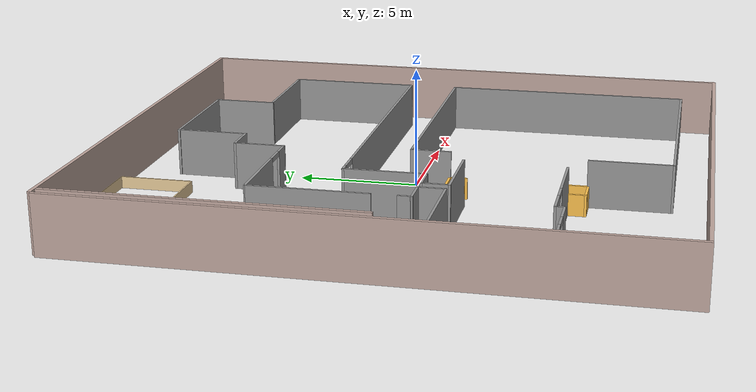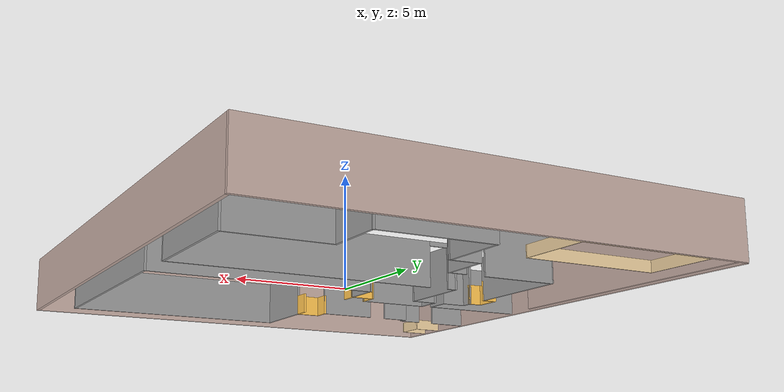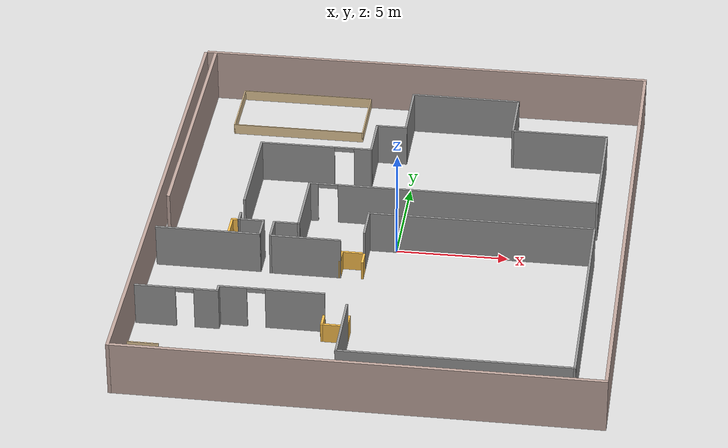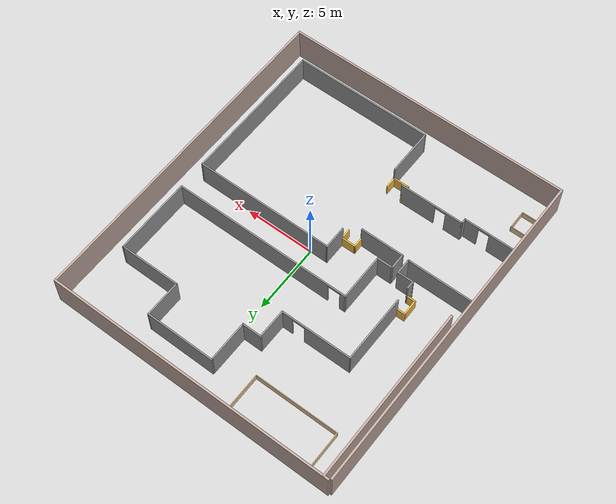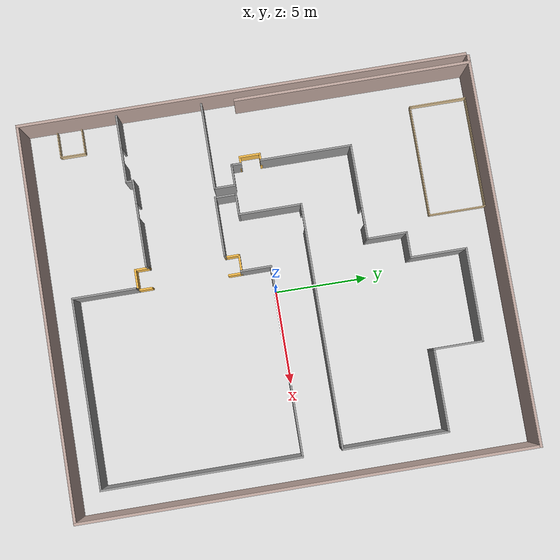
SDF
<?xml version='1.0'?>
<sdf version='1.6'>
  <model name='IKEAfactory'>
    <pose frame=''>-0.168999 -0.006501 0 0 -0 0</pose>
    <link name='Wall_1'>
      <collision name='Wall_1_Collision'>
        <geometry>
          <box>
            <size>21 0.15 2.5</size>
          </box>
        </geometry>
        <pose frame=''>0 0 1.25 0 -0 0</pose>
      </collision>
      <visual name='Wall_1_Visual'>
        <pose frame=''>0 0 1.25 0 -0 0</pose>
        <geometry>
          <box>
            <size>21 0.15 2.5</size>
          </box>
        </geometry>
        <material>
          <script>
            <uri>file://media/materials/scripts/gazebo.material</uri>
            <name>Gazebo/Grey</name>
          </script>
          <ambient>0.760784 0.662745 0.627451 1</ambient>
        </material>
        <meta>
          <layer>0</layer>
        </meta>
      </visual>
      <pose frame=''>-1e-06 -12.1075 0 0 -0 0</pose>
    </link>
    <link name='Wall_500'>
      <collision name='Wall_500_Collision'>
        <geometry>
          <box>
            <size>21 0.15 2.5</size>
          </box>
        </geometry>
        <pose frame=''>0 24.25 1.25 0 -0 0</pose>
      </collision>
      <visual name='Wall_500_Visual'>
        <pose frame=''>0 24.25 1.25 0 -0 0</pose>
        <geometry>
          <box>
            <size>21 0.15 2.5</size>
          </box>
        </geometry>
        <material>
          <script>
            <uri>file://media/materials/scripts/gazebo.material</uri>
            <name>Gazebo/Grey</name>
          </script>
          <ambient>0.760784 0.662745 0.627451 1</ambient>
        </material>
        <meta>
          <layer>0</layer>
        </meta>
      </visual>
      <pose frame=''>-1e-06 -12.1075 0 0 -0 0</pose>
    </link>
    <link name='Wall_101'>
      <collision name='Wall_101_Collision'>
        <geometry>
          <box>
            <size>0.596159 0.1 2</size>
          </box>
        </geometry>
        <pose frame=''>0 0 1 0 -0 0</pose>
      </collision>
      <visual name='Wall_101_Visual'>
        <pose frame=''>0 0 1 0 -0 0</pose>
        <geometry>
          <box>
            <size>0.596159 0.1 2</size>
          </box>
        </geometry>
        <material>
          <script>
            <uri>file://media/materials/scripts/gazebo.material</uri>
            <name>Gazebo/Grey</name>
          </script>
          <ambient>1 1 1 1</ambient>
        </material>
        <meta>
          <layer>0</layer>
        </meta>
      </visual>
      <pose frame=''>-6.782 -0.994499 0 0 -0 -1.57483</pose>
    </link>
    <link name='Wall_102'>
      <collision name='Wall_102_Collision'>
        <geometry>
          <box>
            <size>1.19987 0.1 2</size>
          </box>
        </geometry>
        <pose frame=''>0 0 1 0 -0 0</pose>
      </collision>
      <visual name='Wall_102_Visual'>
        <pose frame=''>0 0 1 0 -0 0</pose>
        <geometry>
          <box>
            <size>1.19987 0.1 2</size>
          </box>
        </geometry>
        <material>
          <script>
            <uri>file://media/materials/scripts/gazebo.material</uri>
            <name>Gazebo/Grey</name>
          </script>
          <ambient>1 1 1 1</ambient>
        </material>
        <meta>
          <layer>0</layer>
        </meta>
      </visual>
      <pose frame=''>-6.233 -1.2425 0 0 -0 0</pose>
    </link>
    <link name='Wall_103'>
      <collision name='Wall_103_Collision'>
        <geometry>
          <box>
            <size>1.16454 0.1 2</size>
          </box>
        </geometry>
        <pose frame=''>0 0 1 0 -0 0</pose>
      </collision>
      <visual name='Wall_103_Visual'>
        <pose frame=''>0 0 1 0 -0 0</pose>
        <geometry>
          <box>
            <size>1.16454 0.1 2</size>
          </box>
        </geometry>
        <material>
          <script>
            <uri>file://media/materials/scripts/gazebo.material</uri>
            <name>Gazebo/Grey</name>
          </script>
          <ambient>1 1 1 1</ambient>
        </material>
        <meta>
          <layer>0</layer>
        </meta>
      </visual>
      <pose frame=''>-5.683 -1.775 0 0 -0 -1.5708</pose>
    </link>
    <link name='Wall_11'>
      <collision name='Wall_11_Collision'>
        <geometry>
          <box>
            <size>0.83917 0.1 0.9</size>
          </box>
        </geometry>
        <pose frame=''>0 0 0.45 0 -0 0</pose>
      </collision>
      <visual name='Wall_11_Visual'>
        <pose frame=''>0 0 0.45 0 -0 0</pose>
        <geometry>
          <box>
            <size>0.83917 0.1 0.9</size>
          </box>
        </geometry>
        <material>
          <script>
            <uri>file://media/materials/scripts/gazebo.material</uri>
            <name>Gazebo/Grey</name>
          </script>
          <ambient>1 0.764706 0.305882 1</ambient>
        </material>
        <meta>
          <layer>0</layer>
        </meta>
      </visual>
      <pose frame=''>-2.19657 -6.92801 0 0 -0 -1.56963</pose>
    </link>
    <link name='Wall_12'>
      <collision name='Wall_12_Collision'>
        <geometry>
          <box>
            <size>1.20212 0.1 0.9</size>
          </box>
        </geometry>
        <pose frame=''>0 0 0.45 0 -0 0</pose>
      </collision>
      <visual name='Wall_12_Visual'>
        <pose frame=''>0 0 0.45 0 -0 0</pose>
        <geometry>
          <box>
            <size>1.20212 0.1 0.9</size>
          </box>
        </geometry>
        <material>
          <script>
            <uri>file://media/materials/scripts/gazebo.material</uri>
            <name>Gazebo/Grey</name>
          </script>
          <ambient>1 0.764706 0.305882 1</ambient>
        </material>
        <meta>
          <layer>0</layer>
        </meta>
      </visual>
      <pose frame=''>-1.64706 -7.29751 0 0 -0 1.6e-05</pose>
    </link>
    <link name='Wall_14'>
      <collision name='Wall_14_Collision'>
        <geometry>
          <box>
            <size>0.83786 0.1 0.9</size>
          </box>
        </geometry>
        <pose frame=''>0 0 0.45 0 -0 0</pose>
      </collision>
      <visual name='Wall_14_Visual'>
        <pose frame=''>0 0 0.45 0 -0 0</pose>
        <geometry>
          <box>
            <size>0.83786 0.1 0.9</size>
          </box>
        </geometry>
        <material>
          <script>
            <uri>file://media/materials/scripts/gazebo.material</uri>
            <name>Gazebo/Grey</name>
          </script>
          <ambient>1 0.764706 0.305882 1</ambient>
        </material>
        <meta>
          <layer>0</layer>
        </meta>
      </visual>
      <pose frame=''>-1.096 -6.9285 0 0 -0 1.5708</pose>
    </link>
    <link name='Wall_2'>
      <collision name='Wall_2_Collision'>
        <geometry>
          <box>
            <size>24.25 0.15 2.5</size>
          </box>
        </geometry>
        <pose frame=''>0 0 1.25 0 -0 0</pose>
      </collision>
      <visual name='Wall_2_Visual'>
        <pose frame=''>0 0 1.25 0 -0 0</pose>
        <geometry>
          <box>
            <size>24.25 0.15 2.5</size>
          </box>
        </geometry>
        <material>
          <script>
            <uri>file://media/materials/scripts/gazebo.material</uri>
            <name>Gazebo/Grey</name>
          </script>
          <ambient>0.760784 0.662745 0.627451 1</ambient>
        </material>
        <meta>
          <layer>0</layer>
        </meta>
      </visual>
      <pose frame=''>10.425 -0.057499 0 0 -0 1.5708</pose>
    </link>
    <link name='Wall_502'>
      <collision name='Wall_502_Collision'>
        <geometry>
          <box>
            <size>24.25 0.15 2.5</size>
          </box>
        </geometry>
        <pose frame=''>0 21 1.25 0 -0 0</pose>
      </collision>
      <visual name='Wall_502_Visual'>
        <pose frame=''>0 21 1.25 0 -0 0</pose>
        <geometry>
          <box>
            <size>24.25 0.15 2.5</size>
          </box>
        </geometry>
        <material>
          <script>
            <uri>file://media/materials/scripts/gazebo.material</uri>
            <name>Gazebo/Grey</name>
          </script>
          <ambient>0.760784 0.662745 0.627451 1</ambient>
        </material>
        <meta>
          <layer>0</layer>
        </meta>
      </visual>
      <pose frame=''>10.425 -0.057499 0 0 -0 1.5708</pose>
    </link>
    <link name='Wall_23'>
      <collision name='Wall_23_Collision'>
        <geometry>
          <box>
            <size>3.45176 0.1 2</size>
          </box>
        </geometry>
        <pose frame=''>0 0 1 0 -0 0</pose>
      </collision>
      <visual name='Wall_23_Visual'>
        <pose frame=''>0 0 1 0 -0 0</pose>
        <geometry>
          <box>
            <size>3.45176 0.1 2</size>
          </box>
        </geometry>
        <material>
          <script>
            <uri>file://media/materials/scripts/gazebo.material</uri>
            <name>Gazebo/Grey</name>
          </script>
          <ambient>1 1 1 1</ambient>
        </material>
        <meta>
          <layer>0</layer>
        </meta>
      </visual>
      <pose frame=''>-1.096 -8.9735 0 0 -0 -1.5708</pose>
    </link>
    <link name='Wall_24'>
      <collision name='Wall_24_Collision'>
        <geometry>
          <box>
            <size>10.2003 0.1 2</size>
          </box>
        </geometry>
        <pose frame=''>0 0 1 0 -0 0</pose>
      </collision>
      <visual name='Wall_24_Visual'>
        <pose frame=''>0 0 1 0 -0 0</pose>
        <geometry>
          <box>
            <size>10.2003 0.1 2</size>
          </box>
        </geometry>
        <material>
          <script>
            <uri>file://media/materials/scripts/gazebo.material</uri>
            <name>Gazebo/Grey</name>
          </script>
          <ambient>1 1 1 1</ambient>
        </material>
        <meta>
          <layer>0</layer>
        </meta>
      </visual>
      <pose frame=''>3.954 -10.6495 0 0 -0 0</pose>
    </link>
    <link name='Wall_26'>
      <collision name='Wall_26_Collision'>
        <geometry>
          <box>
            <size>10.7002 0.1 2</size>
          </box>
        </geometry>
        <pose frame=''>0 0 1 0 -0 0</pose>
      </collision>
      <visual name='Wall_26_Visual'>
        <pose frame=''>0 0 1 0 -0 0</pose>
        <geometry>
          <box>
            <size>10.7002 0.1 2</size>
          </box>
        </geometry>
        <material>
          <script>
            <uri>file://media/materials/scripts/gazebo.material</uri>
            <name>Gazebo/Grey</name>
          </script>
          <ambient>1 1 1 1</ambient>
        </material>
        <meta>
          <layer>0</layer>
        </meta>
      </visual>
      <pose frame=''>9.004 -5.3495 0 0 -0 1.5708</pose>
    </link>
    <link name='Wall_27'>
      <collision name='Wall_27_Collision'>
        <geometry>
          <box>
            <size>10.1997 0.1 2</size>
          </box>
        </geometry>
        <pose frame=''>0 0 1 0 -0 0</pose>
      </collision>
      <visual name='Wall_27_Visual'>
        <pose frame=''>0 0 1 0 -0 0</pose>
        <geometry>
          <box>
            <size>10.1997 0.1 2</size>
          </box>
        </geometry>
        <material>
          <script>
            <uri>file://media/materials/scripts/gazebo.material</uri>
            <name>Gazebo/Grey</name>
          </script>
          <ambient>1 1 1 1</ambient>
        </material>
        <meta>
          <layer>0</layer>
        </meta>
      </visual>
      <pose frame=''>3.954 -0.049499 0 0 -0 3.14159</pose>
    </link>
    <link name='Wall_31'>
      <collision name='Wall_31_Collision'>
        <geometry>
          <box>
            <size>3.2 0.1 2</size>
          </box>
        </geometry>
        <pose frame=''>0 0 1 0 -0 0</pose>
      </collision>
      <visual name='Wall_31_Visual'>
        <pose frame=''>0 0 1 0 -0 0</pose>
        <geometry>
          <box>
            <size>3.2 0.1 2</size>
          </box>
        </geometry>
        <material>
          <script>
            <uri>file://media/materials/scripts/gazebo.material</uri>
            <name>Gazebo/Grey</name>
          </script>
          <ambient>1 1 1 1</ambient>
        </material>
        <meta>
          <layer>0</layer>
        </meta>
      </visual>
      <pose frame=''>-3.643 -2.3785 0 0 -0 0</pose>
    </link>
    <link name='Wall_32'>
      <collision name='Wall_32_Collision'>
        <geometry>
          <box>
            <size>0.835006 0.1 0.9</size>
          </box>
        </geometry>
        <pose frame=''>0 0 0.45 0 -0 0</pose>
      </collision>
      <visual name='Wall_32_Visual'>
        <pose frame=''>0 0 0.45 0 -0 0</pose>
        <geometry>
          <box>
            <size>0.835006 0.1 0.9</size>
          </box>
        </geometry>
        <material>
          <script>
            <uri>file://media/materials/scripts/gazebo.material</uri>
            <name>Gazebo/Grey</name>
          </script>
          <ambient>1 0.764706 0.305882 1</ambient>
        </material>
        <meta>
          <layer>0</layer>
        </meta>
      </visual>
      <pose frame=''>-2.0945 -2.011 0 0 -0 1.57488</pose>
    </link>
    <link name='Wall_33'>
      <collision name='Wall_33_Collision'>
        <geometry>
          <box>
            <size>1.10301 0.1 0.9</size>
          </box>
        </geometry>
        <pose frame=''>0 0 0.45 0 -0 0</pose>
      </collision>
      <visual name='Wall_33_Visual'>
        <pose frame=''>0 0 0.45 0 -0 0</pose>
        <geometry>
          <box>
            <size>1.10301 0.1 0.9</size>
          </box>
        </geometry>
        <material>
          <script>
            <uri>file://media/materials/scripts/gazebo.material</uri>
            <name>Gazebo/Grey</name>
          </script>
          <ambient>1 0.764706 0.305882 1</ambient>
        </material>
        <meta>
          <layer>0</layer>
        </meta>
      </visual>
      <pose frame=''>-1.5945 -1.6455 0 0 -0 -0.003988</pose>
    </link>
    <link name='Wall_34'>
      <collision name='Wall_34_Collision'>
        <geometry>
          <box>
            <size>0.788965 0.1 0.9</size>
          </box>
        </geometry>
        <pose frame=''>0 0 0.45 0 -0 0</pose>
      </collision>
      <visual name='Wall_34_Visual'>
        <pose frame=''>0 0 0.45 0 -0 0</pose>
        <geometry>
          <box>
            <size>0.788965 0.1 0.9</size>
          </box>
        </geometry>
        <material>
          <script>
            <uri>file://media/materials/scripts/gazebo.material</uri>
            <name>Gazebo/Grey</name>
          </script>
          <ambient>1 0.764706 0.305882 1</ambient>
        </material>
        <meta>
          <layer>0</layer>
        </meta>
      </visual>
      <pose frame=''>-1.093 -1.992 0 0 -0 -1.5708</pose>
    </link>
    <link name='Wall_36'>
      <collision name='Wall_36_Collision'>
        <geometry>
          <box>
            <size>1.698 0.1 2</size>
          </box>
        </geometry>
        <pose frame=''>0 0 1 0 -0 0</pose>
      </collision>
      <visual name='Wall_36_Visual'>
        <pose frame=''>0 0 1 0 -0 0</pose>
        <geometry>
          <box>
            <size>1.698 0.1 2</size>
          </box>
        </geometry>
        <material>
          <script>
            <uri>file://media/materials/scripts/gazebo.material</uri>
            <name>Gazebo/Grey</name>
          </script>
          <ambient>1 1 1 1</ambient>
        </material>
        <meta>
          <layer>0</layer>
        </meta>
      </visual>
      <pose frame=''>-1.0945 -0.848499 0 0 -0 1.57267</pose>
    </link>
    <link name='Wall_38'>
      <collision name='Wall_38_Collision'>
        <geometry>
          <box>
            <size>1.20043 0.1 2</size>
          </box>
        </geometry>
        <pose frame=''>0 0 1 0 -0 0</pose>
      </collision>
      <visual name='Wall_38_Visual'>
        <pose frame=''>0 0 1 0 -0 0</pose>
        <geometry>
          <box>
            <size>1.20043 0.1 2</size>
          </box>
        </geometry>
        <material>
          <script>
            <uri>file://media/materials/scripts/gazebo.material</uri>
            <name>Gazebo/Grey</name>
          </script>
          <ambient>1 1 1 1</ambient>
        </material>
        <meta>
          <layer>0</layer>
        </meta>
      </visual>
      <pose frame=''>-5.193 -1.8285 0 0 -0 1.5708</pose>
    </link>
    <link name='Wall_39'>
      <collision name='Wall_39_Collision'>
        <geometry>
          <box>
            <size>1.20014 0.1 2</size>
          </box>
        </geometry>
        <pose frame=''>0 0 1 0 -0 0</pose>
      </collision>
      <visual name='Wall_39_Visual'>
        <pose frame=''>0 0 1 0 -0 0</pose>
        <geometry>
          <box>
            <size>1.20014 0.1 2</size>
          </box>
        </geometry>
        <material>
          <script>
            <uri>file://media/materials/scripts/gazebo.material</uri>
            <name>Gazebo/Grey</name>
          </script>
          <ambient>1 1 1 1</ambient>
        </material>
        <meta>
          <layer>0</layer>
        </meta>
      </visual>
      <pose frame=''>-4.643 -1.2785 0 0 -0 0</pose>
    </link>
    <link name='Wall_44'>
      <collision name='Wall_44_Collision'>
        <geometry>
          <box>
            <size>3.45043 0.1 2</size>
          </box>
        </geometry>
        <pose frame=''>0 0 1 0 -0 0</pose>
      </collision>
      <visual name='Wall_44_Visual'>
        <pose frame=''>0 0 1 0 -0 0</pose>
        <geometry>
          <box>
            <size>3.45043 0.1 2</size>
          </box>
        </geometry>
        <material>
          <script>
            <uri>file://media/materials/scripts/gazebo.material</uri>
            <name>Gazebo/Grey</name>
          </script>
          <ambient>1 1 1 1</ambient>
        </material>
        <meta>
          <layer>0</layer>
        </meta>
      </visual>
      <pose frame=''>-4.093 0.396501 0 0 -0 1.5708</pose>
    </link>
    <link name='Wall_45'>
      <pose frame=''>2.436 2.0715 0 0 -0 0</pose>
      <visual name='Wall_45_Visual_0'>
        <pose frame=''>-6.35502 0 1 0 -0 0</pose>
        <geometry>
          <box>
            <size>0.448158 0.1 2</size>
          </box>
        </geometry>
        <material>
          <script>
            <uri>file://media/materials/scripts/gazebo.material</uri>
            <name>Gazebo/Grey</name>
          </script>
          <ambient>1 1 1 1</ambient>
        </material>
        <meta>
          <layer>0</layer>
        </meta>
      </visual>
      <collision name='Wall_45_Collision_0'>
        <geometry>
          <box>
            <size>0.448158 0.1 2</size>
          </box>
        </geometry>
        <pose frame=''>-6.35502 0 1 0 -0 0</pose>
      </collision>
      <visual name='Wall_45_Visual_1'>
        <pose frame=''>0.674079 0 1 0 -0 0</pose>
        <geometry>
          <box>
            <size>11.81 0.1 2</size>
          </box>
        </geometry>
        <material>
          <script>
            <uri>file://media/materials/scripts/gazebo.material</uri>
            <name>Gazebo/Grey</name>
          </script>
          <ambient>1 1 1 1</ambient>
        </material>
        <meta>
          <layer>0</layer>
        </meta>
      </visual>
      <collision name='Wall_45_Collision_1'>
        <geometry>
          <box>
            <size>11.81 0.1 2</size>
          </box>
        </geometry>
        <pose frame=''>0.674079 0 1 0 -0 0</pose>
      </collision>
      <visual name='Wall_45_Visual_2'>
        <pose frame=''>-5.68094 0 1.9 0 -0 0</pose>
        <geometry>
          <box>
            <size>0.9 0.1 0.2</size>
          </box>
        </geometry>
        <material>
          <script>
            <uri>file://media/materials/scripts/gazebo.material</uri>
            <name>Gazebo/Grey</name>
          </script>
          <ambient>1 1 1 1</ambient>
        </material>
        <meta>
          <layer>0</layer>
        </meta>
      </visual>
      <collision name='Wall_45_Collision_2'>
        <geometry>
          <box>
            <size>0.9 0.1 0.2</size>
          </box>
        </geometry>
        <pose frame=''>-5.68094 0 1.9 0 -0 0</pose>
      </collision>
    </link>
    <link name='Wall_51'>
      <collision name='Wall_51_Collision'>
        <geometry>
          <box>
            <size>2.94957 0.1 2</size>
          </box>
        </geometry>
        <pose frame=''>0 0 1 0 -0 0</pose>
      </collision>
      <visual name='Wall_51_Visual'>
        <pose frame=''>0 0 1 0 -0 0</pose>
        <geometry>
          <box>
            <size>2.94957 0.1 2</size>
          </box>
        </geometry>
        <material>
          <script>
            <uri>file://media/materials/scripts/gazebo.material</uri>
            <name>Gazebo/Grey</name>
          </script>
          <ambient>1 1 1 1</ambient>
        </material>
        <meta>
          <layer>0</layer>
        </meta>
      </visual>
      <pose frame=''>-0.343001 8.7465 0 0 -0 -1.5708</pose>
    </link>
    <link name='Wall_61'>
      <collision name='Wall_61_Collision'>
        <geometry>
          <box>
            <size>1.19999 0.1 0.9</size>
          </box>
        </geometry>
        <pose frame=''>0 0 0.45 0 -0 0</pose>
      </collision>
      <visual name='Wall_61_Visual'>
        <pose frame=''>0 0 0.45 0 -0 0</pose>
        <geometry>
          <box>
            <size>1.19999 0.1 0.9</size>
          </box>
        </geometry>
        <material>
          <script>
            <uri>file://media/materials/scripts/gazebo.material</uri>
            <name>Gazebo/Grey</name>
          </script>
          <ambient>1 0.764706 0.305882 1</ambient>
        </material>
        <meta>
          <layer>0</layer>
        </meta>
      </visual>
      <pose frame=''>-7.385 -0.196499 0 0 -0 -1.5708</pose>
    </link>
    <link name='Wall_68'>
      <collision name='Wall_68_Collision'>
        <geometry>
          <box>
            <size>4.70044 0.1 2</size>
          </box>
        </geometry>
        <pose frame=''>0 0 1 0 -0 0</pose>
      </collision>
      <visual name='Wall_68_Visual'>
        <pose frame=''>0 0 1 0 -0 0</pose>
        <geometry>
          <box>
            <size>4.70044 0.1 2</size>
          </box>
        </geometry>
        <material>
          <script>
            <uri>file://media/materials/scripts/gazebo.material</uri>
            <name>Gazebo/Grey</name>
          </script>
          <ambient>1 1 1 1</ambient>
        </material>
        <meta>
          <layer>0</layer>
        </meta>
      </visual>
      <pose frame=''>-8.01 -2.3265 0 0 -0 3.14159</pose>
    </link>
    <link name='Wall_7'>
      <pose frame=''>-8.597 -6.9085 0 0 -0 0</pose>
      <visual name='Wall_7_Visual_0'>
        <pose frame=''>-0.944521 0 1 0 -0 0</pose>
        <geometry>
          <box>
            <size>1.81096 0.1 2</size>
          </box>
        </geometry>
        <material>
          <script>
            <uri>file://media/materials/scripts/gazebo.material</uri>
            <name>Gazebo/Grey</name>
          </script>
          <ambient>1 1 1 1</ambient>
        </material>
        <meta>
          <layer>0</layer>
        </meta>
      </visual>
      <collision name='Wall_7_Collision_0'>
        <geometry>
          <box>
            <size>1.81096 0.1 2</size>
          </box>
        </geometry>
        <pose frame=''>-0.944521 0 1 0 -0 0</pose>
      </collision>
      <visual name='Wall_7_Visual_1'>
        <pose frame=''>1.30548 0 1 0 -0 0</pose>
        <geometry>
          <box>
            <size>1.08904 0.1 2</size>
          </box>
        </geometry>
        <material>
          <script>
            <uri>file://media/materials/scripts/gazebo.material</uri>
            <name>Gazebo/Grey</name>
          </script>
          <ambient>1 1 1 1</ambient>
        </material>
        <meta>
          <layer>0</layer>
        </meta>
      </visual>
      <collision name='Wall_7_Collision_1'>
        <geometry>
          <box>
            <size>1.08904 0.1 2</size>
          </box>
        </geometry>
        <pose frame=''>1.30548 0 1 0 -0 0</pose>
      </collision>
      <visual name='Wall_7_Visual_2'>
        <pose frame=''>0.360957 0 1.9 0 -0 0</pose>
        <geometry>
          <box>
            <size>0.8 0.1 0.2</size>
          </box>
        </geometry>
        <material>
          <script>
            <uri>file://media/materials/scripts/gazebo.material</uri>
            <name>Gazebo/Grey</name>
          </script>
          <ambient>1 1 1 1</ambient>
        </material>
        <meta>
          <layer>0</layer>
        </meta>
      </visual>
      <collision name='Wall_7_Collision_2'>
        <geometry>
          <box>
            <size>0.8 0.1 0.2</size>
          </box>
        </geometry>
        <pose frame=''>0.360957 0 1.9 0 -0 0</pose>
      </collision>
    </link>
    <link name='Wall_70'>
      <collision name='Wall_70_Collision'>
        <geometry>
          <box>
            <size>3.15 0.05 0.5</size>
          </box>
        </geometry>
        <pose frame=''>0 0 0.25 0 -0 0</pose>
      </collision>
      <visual name='Wall_70_Visual'>
        <pose frame=''>0 0 0.25 0 -0 0</pose>
        <geometry>
          <box>
            <size>3.15 0.05 0.5</size>
          </box>
        </geometry>
        <material>
          <script>
            <uri>file://media/materials/scripts/gazebo.material</uri>
            <name>Gazebo/Grey</name>
          </script>
          <ambient>0.921569 0.807843 0.615686 1</ambient>
        </material>
        <meta>
          <layer>0</layer>
        </meta>
      </visual>
      <pose frame=''>-8.713 10.5215 0 0 -0 -1.5708</pose>
    </link>
    <link name='Wall_71'>
      <collision name='Wall_71_Collision'>
        <geometry>
          <box>
            <size>6.15044 0.05 0.5</size>
          </box>
        </geometry>
        <pose frame=''>0 0 0.25 0 -0 0</pose>
      </collision>
      <visual name='Wall_71_Visual'>
        <pose frame=''>0 0 0.25 0 -0 0</pose>
        <geometry>
          <box>
            <size>6.15044 0.05 0.5</size>
          </box>
        </geometry>
        <material>
          <script>
            <uri>file://media/materials/scripts/gazebo.material</uri>
            <name>Gazebo/Grey</name>
          </script>
          <ambient>0.921569 0.807843 0.615686 1</ambient>
        </material>
        <meta>
          <layer>0</layer>
        </meta>
      </visual>
      <pose frame=''>-5.663 8.9715 0 0 -0 0</pose>
    </link>
    <link name='Wall_72'>
      <collision name='Wall_72_Collision'>
        <geometry>
          <box>
            <size>3.14999 0.05 0.5</size>
          </box>
        </geometry>
        <pose frame=''>0 0 0.25 0 -0 0</pose>
      </collision>
      <visual name='Wall_72_Visual'>
        <pose frame=''>0 0 0.25 0 -0 0</pose>
        <geometry>
          <box>
            <size>3.14999 0.05 0.5</size>
          </box>
        </geometry>
        <material>
          <script>
            <uri>file://media/materials/scripts/gazebo.material</uri>
            <name>Gazebo/Grey</name>
          </script>
          <ambient>0.921569 0.807843 0.615686 1</ambient>
        </material>
        <meta>
          <layer>0</layer>
        </meta>
      </visual>
      <pose frame=''>-2.613 10.5215 0 0 -0 1.5708</pose>
    </link>
    <link name='Wall_73'>
      <collision name='Wall_73_Collision'>
        <geometry>
          <box>
            <size>6.14956 0.05 0.5</size>
          </box>
        </geometry>
        <pose frame=''>0 0 0.25 0 -0 0</pose>
      </collision>
      <visual name='Wall_73_Visual'>
        <pose frame=''>0 0 0.25 0 -0 0</pose>
        <geometry>
          <box>
            <size>6.14956 0.05 0.5</size>
          </box>
        </geometry>
        <material>
          <script>
            <uri>file://media/materials/scripts/gazebo.material</uri>
            <name>Gazebo/Grey</name>
          </script>
          <ambient>0.921569 0.807843 0.615686 1</ambient>
        </material>
        <meta>
          <layer>0</layer>
        </meta>
      </visual>
      <pose frame=''>-5.663 12.0715 0 0 -0 3.14159</pose>
    </link>
    <link name='Wall_75'>
      <collision name='Wall_75_Collision'>
        <geometry>
          <box>
            <size>12.75 0.15 2.5</size>
          </box>
        </geometry>
        <pose frame=''>0 0 1.25 0 -0 0</pose>
      </collision>
      <visual name='Wall_75_Visual'>
        <pose frame=''>0 0 1.25 0 -0 0</pose>
        <geometry>
          <box>
            <size>12.75 0.15 2.5</size>
          </box>
        </geometry>
        <material>
          <script>
            <uri>file://media/materials/scripts/gazebo.material</uri>
            <name>Gazebo/Grey</name>
          </script>
          <ambient>0.760784 0.662745 0.627451 1</ambient>
        </material>
        <meta>
          <layer>0</layer>
        </meta>
      </visual>
      <pose frame=''>-10.099 5.8075 0 0 -0 1.5708</pose>
    </link>
    <link name='Wall_77'>
      <collision name='Wall_77_Collision'>
        <geometry>
          <box>
            <size>5.70043 0.1 2</size>
          </box>
        </geometry>
        <pose frame=''>0 0 1 0 -0 0</pose>
      </collision>
      <visual name='Wall_77_Visual'>
        <pose frame=''>0 0 1 0 -0 0</pose>
        <geometry>
          <box>
            <size>5.70043 0.1 2</size>
          </box>
        </geometry>
        <material>
          <script>
            <uri>file://media/materials/scripts/gazebo.material</uri>
            <name>Gazebo/Grey</name>
          </script>
          <ambient>1 1 1 1</ambient>
        </material>
        <meta>
          <layer>0</layer>
        </meta>
      </visual>
      <pose frame=''>8.965 4.8715 0 0 -0 1.5708</pose>
    </link>
    <link name='Wall_78'>
      <collision name='Wall_78_Collision'>
        <geometry>
          <box>
            <size>4.44981 0.1 2</size>
          </box>
        </geometry>
        <pose frame=''>0 0 1 0 -0 0</pose>
      </collision>
      <visual name='Wall_78_Visual'>
        <pose frame=''>0 0 1 0 -0 0</pose>
        <geometry>
          <box>
            <size>4.44981 0.1 2</size>
          </box>
        </geometry>
        <material>
          <script>
            <uri>file://media/materials/scripts/gazebo.material</uri>
            <name>Gazebo/Grey</name>
          </script>
          <ambient>1 1 1 1</ambient>
        </material>
        <meta>
          <layer>0</layer>
        </meta>
      </visual>
      <pose frame=''>6.79 7.6715 0 0 -0 3.14159</pose>
    </link>
    <link name='Wall_79'>
      <collision name='Wall_79_Collision'>
        <geometry>
          <box>
            <size>2.70043 0.1 2</size>
          </box>
        </geometry>
        <pose frame=''>0 0 1 0 -0 0</pose>
      </collision>
      <visual name='Wall_79_Visual'>
        <pose frame=''>0 0 1 0 -0 0</pose>
        <geometry>
          <box>
            <size>2.70043 0.1 2</size>
          </box>
        </geometry>
        <material>
          <script>
            <uri>file://media/materials/scripts/gazebo.material</uri>
            <name>Gazebo/Grey</name>
          </script>
          <ambient>1 1 1 1</ambient>
        </material>
        <meta>
          <layer>0</layer>
        </meta>
      </visual>
      <pose frame=''>4.615 8.9715 0 0 -0 1.5708</pose>
    </link>
    <link name='Wall_8'>
      <collision name='Wall_8_Collision'>
        <geometry>
          <box>
            <size>0.45 0.1 2</size>
          </box>
        </geometry>
        <pose frame=''>0 0 1 0 -0 0</pose>
      </collision>
      <visual name='Wall_8_Visual'>
        <pose frame=''>0 0 1 0 -0 0</pose>
        <geometry>
          <box>
            <size>0.45 0.1 2</size>
          </box>
        </geometry>
        <material>
          <script>
            <uri>file://media/materials/scripts/gazebo.material</uri>
            <name>Gazebo/Grey</name>
          </script>
          <ambient>1 1 1 1</ambient>
        </material>
        <meta>
          <layer>0</layer>
        </meta>
      </visual>
      <pose frame=''>-6.797 -6.7335 0 0 -0 1.5708</pose>
    </link>
    <link name='Wall_81'>
      <collision name='Wall_81_Collision'>
        <geometry>
          <box>
            <size>5.05415 0.1 2</size>
          </box>
        </geometry>
        <pose frame=''>0 0 1 0 -0 0</pose>
      </collision>
      <visual name='Wall_81_Visual'>
        <pose frame=''>0 0 1 0 -0 0</pose>
        <geometry>
          <box>
            <size>5.05415 0.1 2</size>
          </box>
        </geometry>
        <material>
          <script>
            <uri>file://media/materials/scripts/gazebo.material</uri>
            <name>Gazebo/Grey</name>
          </script>
          <ambient>1 1 1 1</ambient>
        </material>
        <meta>
          <layer>0</layer>
        </meta>
      </visual>
      <pose frame=''>2.138 10.2805 0 0 -0 3.13796</pose>
    </link>
    <link name='Wall_83'>
      <collision name='Wall_83_Collision'>
        <geometry>
          <box>
            <size>1.39953 0.05 0.5</size>
          </box>
        </geometry>
        <pose frame=''>0 0 0.25 0 -0 0</pose>
      </collision>
      <visual name='Wall_83_Visual'>
        <pose frame=''>0 0 0.25 0 -0 0</pose>
        <geometry>
          <box>
            <size>1.39953 0.05 0.5</size>
          </box>
        </geometry>
        <material>
          <script>
            <uri>file://media/materials/scripts/gazebo.material</uri>
            <name>Gazebo/Grey</name>
          </script>
          <ambient>0.921569 0.807843 0.615686 1</ambient>
        </material>
        <meta>
          <layer>0</layer>
        </meta>
      </visual>
      <pose frame=''>-9.728 -9.0715 0 0 -0 0</pose>
    </link>
    <link name='Wall_84'>
      <collision name='Wall_84_Collision'>
        <geometry>
          <box>
            <size>1.40022 0.05 0.5</size>
          </box>
        </geometry>
        <pose frame=''>0 0 0.25 0 -0 0</pose>
      </collision>
      <visual name='Wall_84_Visual'>
        <pose frame=''>0 0 0.25 0 -0 0</pose>
        <geometry>
          <box>
            <size>1.40022 0.05 0.5</size>
          </box>
        </geometry>
        <material>
          <script>
            <uri>file://media/materials/scripts/gazebo.material</uri>
            <name>Gazebo/Grey</name>
          </script>
          <ambient>0.921569 0.807843 0.615686 1</ambient>
        </material>
        <meta>
          <layer>0</layer>
        </meta>
      </visual>
      <pose frame=''>-9.053 -9.7465 0 0 -0 -1.5708</pose>
    </link>
    <link name='Wall_85'>
      <collision name='Wall_85_Collision'>
        <geometry>
          <box>
            <size>1.40047 0.05 0.5</size>
          </box>
        </geometry>
        <pose frame=''>0 0 0.25 0 -0 0</pose>
      </collision>
      <visual name='Wall_85_Visual'>
        <pose frame=''>0 0 0.25 0 -0 0</pose>
        <geometry>
          <box>
            <size>1.40047 0.05 0.5</size>
          </box>
        </geometry>
        <material>
          <script>
            <uri>file://media/materials/scripts/gazebo.material</uri>
            <name>Gazebo/Grey</name>
          </script>
          <ambient>0.921569 0.807843 0.615686 1</ambient>
        </material>
        <meta>
          <layer>0</layer>
        </meta>
      </visual>
      <pose frame=''>-9.728 -10.4215 0 0 -0 3.14159</pose>
    </link>
    <link name='Wall_87'>
      <collision name='Wall_87_Collision'>
        <geometry>
          <box>
            <size>1.45 0.1 2</size>
          </box>
        </geometry>
        <pose frame=''>0 0 1 0 -0 0</pose>
      </collision>
      <visual name='Wall_87_Visual'>
        <pose frame=''>0 0 1 0 -0 0</pose>
        <geometry>
          <box>
            <size>1.45 0.1 2</size>
          </box>
        </geometry>
        <material>
          <script>
            <uri>file://media/materials/scripts/gazebo.material</uri>
            <name>Gazebo/Grey</name>
          </script>
          <ambient>1 1 1 1</ambient>
        </material>
        <meta>
          <layer>0</layer>
        </meta>
      </visual>
      <pose frame=''>-1.018 7.3215 0 0 -0 3.14159</pose>
    </link>
    <link name='Wall_88'>
      <collision name='Wall_88_Collision'>
        <geometry>
          <box>
            <size>2.2 0.1 2</size>
          </box>
        </geometry>
        <pose frame=''>0 0 1 0 -0 0</pose>
      </collision>
      <visual name='Wall_88_Visual'>
        <pose frame=''>0 0 1 0 -0 0</pose>
        <geometry>
          <box>
            <size>2.2 0.1 2</size>
          </box>
        </geometry>
        <material>
          <script>
            <uri>file://media/materials/scripts/gazebo.material</uri>
            <name>Gazebo/Grey</name>
          </script>
          <ambient>1 1 1 1</ambient>
        </material>
        <meta>
          <layer>0</layer>
        </meta>
      </visual>
      <pose frame=''>-1.693 6.2715 0 0 -0 -1.5708</pose>
    </link>
    <link name='Wall_89'>
      <pose frame=''>-4.243 5.2125 0 0 -0 -3.13806</pose>
      <visual name='Wall_89_Visual_0'>
        <pose frame=''>-2.17618 0 1 0 -0 0</pose>
        <geometry>
          <box>
            <size>0.847682 0.1 2</size>
          </box>
        </geometry>
        <material>
          <script>
            <uri>file://media/materials/scripts/gazebo.material</uri>
            <name>Gazebo/Grey</name>
          </script>
          <ambient>1 1 1 1</ambient>
        </material>
        <meta>
          <layer>0</layer>
        </meta>
      </visual>
      <collision name='Wall_89_Collision_0'>
        <geometry>
          <box>
            <size>0.847682 0.1 2</size>
          </box>
        </geometry>
        <pose frame=''>-2.17618 0 1 0 -0 0</pose>
      </collision>
      <visual name='Wall_89_Visual_1'>
        <pose frame=''>0.873841 0 1 0 -0 0</pose>
        <geometry>
          <box>
            <size>3.45235 0.1 2</size>
          </box>
        </geometry>
        <material>
          <script>
            <uri>file://media/materials/scripts/gazebo.material</uri>
            <name>Gazebo/Grey</name>
          </script>
          <ambient>1 1 1 1</ambient>
        </material>
        <meta>
          <layer>0</layer>
        </meta>
      </visual>
      <collision name='Wall_89_Collision_1'>
        <geometry>
          <box>
            <size>3.45235 0.1 2</size>
          </box>
        </geometry>
        <pose frame=''>0.873841 0 1 0 -0 0</pose>
      </collision>
      <visual name='Wall_89_Visual_2'>
        <pose frame=''>-1.30233 0 1.9 0 -0 0</pose>
        <geometry>
          <box>
            <size>0.9 0.1 0.2</size>
          </box>
        </geometry>
        <material>
          <script>
            <uri>file://media/materials/scripts/gazebo.material</uri>
            <name>Gazebo/Grey</name>
          </script>
          <ambient>1 1 1 1</ambient>
        </material>
        <meta>
          <layer>0</layer>
        </meta>
      </visual>
      <collision name='Wall_89_Collision_2'>
        <geometry>
          <box>
            <size>0.9 0.1 0.2</size>
          </box>
        </geometry>
        <pose frame=''>-1.30233 0 1.9 0 -0 0</pose>
      </collision>
    </link>
    <link name='Wall_9'>
      <pose frame=''>-4.497 -6.5585 0 0 -0 0</pose>
      <visual name='Wall_9_Visual_0'>
        <pose frame=''>-1.70667 0 1 0 -0 0</pose>
        <geometry>
          <box>
            <size>1.28667 0.1 2</size>
          </box>
        </geometry>
        <material>
          <script>
            <uri>file://media/materials/scripts/gazebo.material</uri>
            <name>Gazebo/Grey</name>
          </script>
          <ambient>1 1 1 1</ambient>
        </material>
        <meta>
          <layer>0</layer>
        </meta>
      </visual>
      <collision name='Wall_9_Collision_0'>
        <geometry>
          <box>
            <size>1.28667 0.1 2</size>
          </box>
        </geometry>
        <pose frame=''>-1.70667 0 1 0 -0 0</pose>
      </collision>
      <visual name='Wall_9_Visual_1'>
        <pose frame=''>1.04333 0 1 0 -0 0</pose>
        <geometry>
          <box>
            <size>2.61333 0.1 2</size>
          </box>
        </geometry>
        <material>
          <script>
            <uri>file://media/materials/scripts/gazebo.material</uri>
            <name>Gazebo/Grey</name>
          </script>
          <ambient>1 1 1 1</ambient>
        </material>
        <meta>
          <layer>0</layer>
        </meta>
      </visual>
      <collision name='Wall_9_Collision_1'>
        <geometry>
          <box>
            <size>2.61333 0.1 2</size>
          </box>
        </geometry>
        <pose frame=''>1.04333 0 1 0 -0 0</pose>
      </collision>
      <visual name='Wall_9_Visual_2'>
        <pose frame=''>-0.66333 0 1.9 0 -0 0</pose>
        <geometry>
          <box>
            <size>0.8 0.1 0.2</size>
          </box>
        </geometry>
        <material>
          <script>
            <uri>file://media/materials/scripts/gazebo.material</uri>
            <name>Gazebo/Grey</name>
          </script>
          <ambient>1 1 1 1</ambient>
        </material>
        <meta>
          <layer>0</layer>
        </meta>
      </visual>
      <collision name='Wall_9_Collision_2'>
        <geometry>
          <box>
            <size>0.8 0.1 0.2</size>
          </box>
        </geometry>
        <pose frame=''>-0.66333 0 1.9 0 -0 0</pose>
      </collision>
    </link>
    <link name='Wall_92'>
      <collision name='Wall_92_Collision'>
        <geometry>
          <box>
            <size>4.94999 0.1 2</size>
          </box>
        </geometry>
        <pose frame=''>0 0 1 0 -0 0</pose>
      </collision>
      <visual name='Wall_92_Visual'>
        <pose frame=''>0 0 1 0 -0 0</pose>
        <geometry>
          <box>
            <size>4.94999 0.1 2</size>
          </box>
        </geometry>
        <material>
          <script>
            <uri>file://media/materials/scripts/gazebo.material</uri>
            <name>Gazebo/Grey</name>
          </script>
          <ambient>1 1 1 1</ambient>
        </material>
        <meta>
          <layer>0</layer>
        </meta>
      </visual>
      <pose frame=''>-6.793 2.7785 0 0 -0 -1.5708</pose>
    </link>
    <link name='Wall_93'>
      <collision name='Wall_93_Collision'>
        <geometry>
          <box>
            <size>0.692 0.1 0.9</size>
          </box>
        </geometry>
        <pose frame=''>0 0 0.45 0 -0 0</pose>
      </collision>
      <visual name='Wall_93_Visual'>
        <pose frame=''>0 0 0.45 0 -0 0</pose>
        <geometry>
          <box>
            <size>0.692 0.1 0.9</size>
          </box>
        </geometry>
        <material>
          <script>
            <uri>file://media/materials/scripts/gazebo.material</uri>
            <name>Gazebo/Grey</name>
          </script>
          <ambient>1 0.764706 0.305882 1</ambient>
        </material>
        <meta>
          <layer>0</layer>
        </meta>
      </visual>
      <pose frame=''>-7.089 0.353501 0 0 -0 3.14159</pose>
    </link>
    <link name='Wall_95'>
      <collision name='Wall_95_Collision'>
        <geometry>
          <box>
            <size>0.704 0.1 0.9</size>
          </box>
        </geometry>
        <pose frame=''>0 0 0.45 0 -0 0</pose>
      </collision>
      <visual name='Wall_95_Visual'>
        <pose frame=''>0 0 0.45 0 -0 0</pose>
        <geometry>
          <box>
            <size>0.704 0.1 0.9</size>
          </box>
        </geometry>
        <material>
          <script>
            <uri>file://media/materials/scripts/gazebo.material</uri>
            <name>Gazebo/Grey</name>
          </script>
          <ambient>1 0.764706 0.305882 1</ambient>
        </material>
        <meta>
          <layer>0</layer>
        </meta>
      </visual>
      <pose frame=''>-7.083 -0.746499 0 0 -0 0</pose>
    </link>
    <static>1</static>
  </model>
</sdf>
